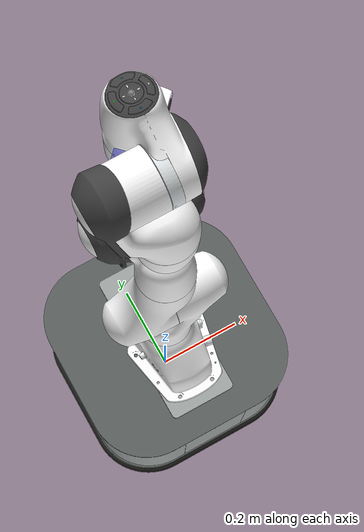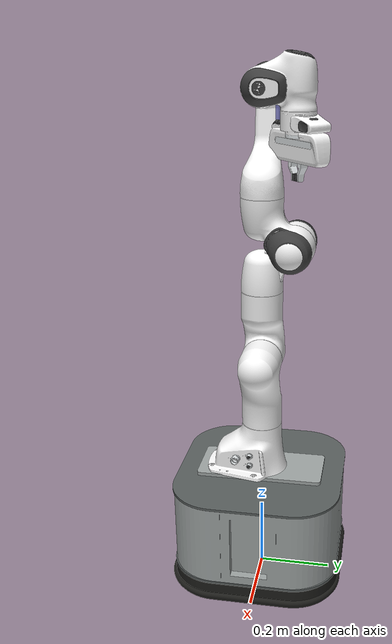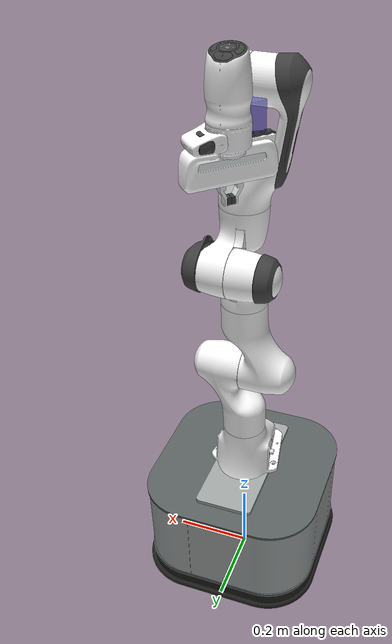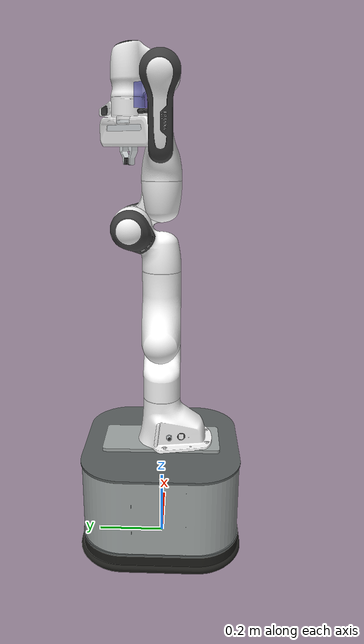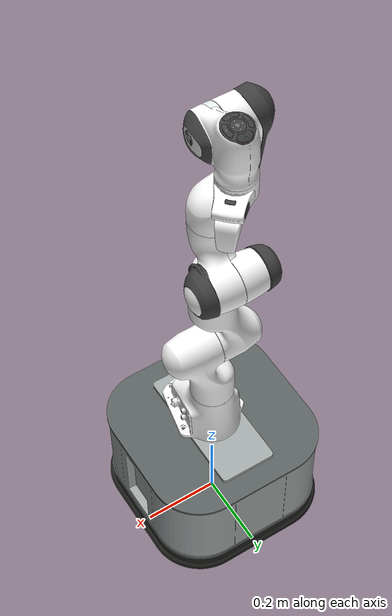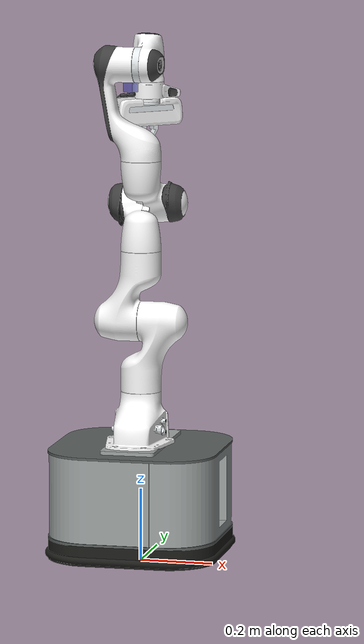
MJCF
<mujoco model="tidybot_panda">
  <compiler angle="radian" meshdir="../assets" autolimits="true" />
  <option integrator="implicitfast" />
  <option cone="elliptic" impratio="10" />

  <default>

    <default class="base">
      <default class="base/visual">
        <geom type="mesh" contype="0" conaffinity="0" group="2" />
      </default>
      <default class="base/collision">
        <geom type="mesh" group="3" />
      </default>
    </default>

    <default class="panda">
      <material specular="0.5" shininess="0.25" />
      <joint armature="0.1" damping="1" axis="0 0 1" range="-2.8973 2.8973" />
      <general dyntype="none" biastype="affine" ctrlrange="-2.8973 2.8973" forcerange="-87 87" />
      <default class="finger">
        <joint axis="0 1 0" type="slide" range="0 0.04" />
      </default>
      <default class="visual">
        <geom type="mesh" contype="0" conaffinity="0" group="2" />
      </default>
      <default class="collision">
        <geom type="mesh" group="3" />
        <default class="fingertip_pad_collision_1">
          <geom type="box" size="0.0085 0.004 0.0085" pos="0 0.0055 0.0445" />
        </default>
        <default class="fingertip_pad_collision_2">
          <geom type="box" size="0.003 0.002 0.003" pos="0.0055 0.002 0.05" />
        </default>
        <default class="fingertip_pad_collision_3">
          <geom type="box" size="0.003 0.002 0.003" pos="-0.0055 0.002 0.05" />
        </default>
        <default class="fingertip_pad_collision_4">
          <geom type="box" size="0.003 0.002 0.0035" pos="0.0055 0.002 0.0395" />
        </default>
        <default class="fingertip_pad_collision_5">
          <geom type="box" size="0.003 0.002 0.0035" pos="-0.0055 0.002 0.0395" />
        </default>
      </default>
    </default>
  </default>

  <asset>

    <material name="base_black" rgba="0.11372549 0.11372549 0.10196078 1" />
    <material name="base_gray" rgba="0.62745098 0.65098039 0.64705882 1" />
    <material name="base_dark_gray" rgba="0.35294118 0.37647059 0.37254902 1" />
    <mesh file="base/bumper.stl" />
    <mesh file="base/bottom_plate.stl" />
    <mesh file="base/body.stl" />
    <mesh file="base/top_plate.stl" />
    <mesh file="base/arm_plate.stl" />

    <material class="panda" name="white" rgba="1 1 1 1" />
    <material class="panda" name="off_white" rgba="0.901961 0.921569 0.929412 1" />
    <material class="panda" name="black" rgba="0.25 0.25 0.25 1" />
    <material class="panda" name="green" rgba="0 1 0 1" />
    <material class="panda" name="light_blue" rgba="0.039216 0.541176 0.780392 1" />

    <mesh name="link0_c" file="franka_emika_panda/assets/link0.stl" />
    <mesh name="link1_c" file="franka_emika_panda/assets/link1.stl" />
    <mesh name="link2_c" file="franka_emika_panda/assets/link2.stl" />
    <mesh name="link3_c" file="franka_emika_panda/assets/link3.stl" />
    <mesh name="link4_c" file="franka_emika_panda/assets/link4.stl" />
    <mesh name="link5_c0" file="franka_emika_panda/assets/link5_collision_0.obj" />
    <mesh name="link5_c1" file="franka_emika_panda/assets/link5_collision_1.obj" />
    <mesh name="link5_c2" file="franka_emika_panda/assets/link5_collision_2.obj" />
    <mesh name="link6_c" file="franka_emika_panda/assets/link6.stl" />
    <mesh name="link7_c" file="franka_emika_panda/assets/link7.stl" />
    <mesh name="hand_c" file="franka_emika_panda/assets/hand.stl" />

    <!-- Visual meshes -->
    <mesh file="franka_emika_panda/assets/link0_0.obj"/>
    <mesh file="franka_emika_panda/assets/link0_1.obj"/>
    <mesh file="franka_emika_panda/assets/link0_2.obj"/>
    <mesh file="franka_emika_panda/assets/link0_3.obj"/>
    <mesh file="franka_emika_panda/assets/link0_4.obj"/>
    <mesh file="franka_emika_panda/assets/link0_5.obj"/>
    <mesh file="franka_emika_panda/assets/link0_7.obj"/>
    <mesh file="franka_emika_panda/assets/link0_8.obj"/>
    <mesh file="franka_emika_panda/assets/link0_9.obj"/>
    <mesh file="franka_emika_panda/assets/link0_10.obj"/>
    <mesh file="franka_emika_panda/assets/link0_11.obj"/>
    <mesh file="franka_emika_panda/assets/link1.obj"/>
    <mesh file="franka_emika_panda/assets/link2.obj"/>
    <mesh file="franka_emika_panda/assets/link3_0.obj"/>
    <mesh file="franka_emika_panda/assets/link3_1.obj"/>
    <mesh file="franka_emika_panda/assets/link3_2.obj"/>
    <mesh file="franka_emika_panda/assets/link3_3.obj"/>
    <mesh file="franka_emika_panda/assets/link4_0.obj"/>
    <mesh file="franka_emika_panda/assets/link4_1.obj"/>
    <mesh file="franka_emika_panda/assets/link4_2.obj"/>
    <mesh file="franka_emika_panda/assets/link4_3.obj"/>
    <mesh file="franka_emika_panda/assets/link5_0.obj"/>
    <mesh file="franka_emika_panda/assets/link5_1.obj"/>
    <mesh file="franka_emika_panda/assets/link5_2.obj"/>
    <mesh file="franka_emika_panda/assets/link6_0.obj"/>
    <mesh file="franka_emika_panda/assets/link6_1.obj"/>
    <mesh file="franka_emika_panda/assets/link6_2.obj"/>
    <mesh file="franka_emika_panda/assets/link6_3.obj"/>
    <mesh file="franka_emika_panda/assets/link6_4.obj"/>
    <mesh file="franka_emika_panda/assets/link6_5.obj"/>
    <mesh file="franka_emika_panda/assets/link6_6.obj"/>
    <mesh file="franka_emika_panda/assets/link6_7.obj"/>
    <mesh file="franka_emika_panda/assets/link6_8.obj"/>
    <mesh file="franka_emika_panda/assets/link6_9.obj"/>
    <mesh file="franka_emika_panda/assets/link6_10.obj"/>
    <mesh file="franka_emika_panda/assets/link6_11.obj"/>
    <mesh file="franka_emika_panda/assets/link6_12.obj"/>
    <mesh file="franka_emika_panda/assets/link6_13.obj"/>
    <mesh file="franka_emika_panda/assets/link6_14.obj"/>
    <mesh file="franka_emika_panda/assets/link6_15.obj"/>
    <mesh file="franka_emika_panda/assets/link6_16.obj"/>
    <mesh file="franka_emika_panda/assets/link7_0.obj"/>
    <mesh file="franka_emika_panda/assets/link7_1.obj"/>
    <mesh file="franka_emika_panda/assets/link7_2.obj"/>
    <mesh file="franka_emika_panda/assets/link7_3.obj"/>
    <mesh file="franka_emika_panda/assets/link7_4.obj"/>
    <mesh file="franka_emika_panda/assets/link7_5.obj"/>
    <mesh file="franka_emika_panda/assets/link7_6.obj"/>
    <mesh file="franka_emika_panda/assets/link7_7.obj"/>
    <mesh file="franka_emika_panda/assets/hand_0.obj"/>
    <mesh file="franka_emika_panda/assets/hand_1.obj"/>
    <mesh file="franka_emika_panda/assets/hand_2.obj"/>
    <mesh file="franka_emika_panda/assets/hand_3.obj"/>
    <mesh file="franka_emika_panda/assets/hand_4.obj"/>
    <mesh file="franka_emika_panda/assets/finger_0.obj"/>
    <mesh file="franka_emika_panda/assets/finger_1.obj"/>

  </asset>

  <worldbody>
    <light name="top" pos="0 0 2" mode="trackcom" />

    <body name="base_link">
      <inertial pos="0 0 0.035" mass="60" diaginertia="0.001 0.001 0.001" />
      <joint name="joint_x" type="slide" axis="1 0 0" />
      <joint name="joint_y" type="slide" axis="0 1 0" />
      <joint name="joint_th" />

      <geom class="base/visual" mesh="bumper" material="base_black" />
      <geom class="base/visual" mesh="bottom_plate" material="base_dark_gray" />
      <geom class="base/visual" mesh="body" material="base_gray" />
      <geom class="base/visual" mesh="top_plate" material="base_dark_gray" />
      <geom class="base/visual" mesh="arm_plate" material="base_gray" />
      <geom class="base/collision" mesh="bumper" />
      <geom class="base/collision" mesh="bottom_plate" />
      <geom class="base/collision" mesh="body" />
      <geom class="base/collision" mesh="top_plate" />
      <geom class="base/collision" mesh="arm_plate" />

      <camera name="base_cam" pos="0.2525 0 0.335" euler="0 -0.7853981634 -1.5707963268" fovy="52.23" resolution="640 360" />

      <body name="link0" pos="0 0 0.333" quat="0.7071068 0 0 0.7071068" childclass="panda">
        <inertial mass="0.629769" pos="-0.041018 -0.00014 0.049974"
          fullinertia="0.00315 0.00388 0.004285 8.2904e-7 0.00015 8.2299e-6"/>
        <geom mesh="link0_0" material="off_white" class="visual"/>
        <geom mesh="link0_1" material="black" class="visual"/>
        <geom mesh="link0_2" material="off_white" class="visual"/>
        <geom mesh="link0_3" material="black" class="visual"/>
        <geom mesh="link0_4" material="off_white" class="visual"/>
        <geom mesh="link0_5" material="black" class="visual"/>
        <geom mesh="link0_7" material="white" class="visual"/>
        <geom mesh="link0_8" material="white" class="visual"/>
        <geom mesh="link0_9" material="black" class="visual"/>
        <geom mesh="link0_10" material="off_white" class="visual"/>
        <geom mesh="link0_11" material="white" class="visual"/>
        <geom mesh="link0_c" class="collision"/>
        <body name="link1" pos="0 0 0.333">
          <inertial mass="4.970684" pos="0.003875 0.002081 -0.04762"
            fullinertia="0.70337 0.70661 0.0091170 -0.00013900 0.0067720 0.019169"/>
          <joint name="joint1"/>
          <geom material="white" mesh="link1" class="visual"/>
          <geom mesh="link1_c" class="collision"/>
          <body name="link2" quat="1 -1 0 0">
            <inertial mass="0.646926" pos="-0.003141 -0.02872 0.003495"
              fullinertia="0.0079620 2.8110e-2 2.5995e-2 -3.925e-3 1.0254e-2 7.04e-4"/>
            <joint name="joint2" range="-1.7628 1.7628"/>
            <geom material="white" mesh="link2" class="visual"/>
            <geom mesh="link2_c" class="collision"/>
            <body name="link3" pos="0 -0.316 0" quat="1 1 0 0">
              <joint name="joint3"/>
              <inertial mass="3.228604" pos="2.7518e-2 3.9252e-2 -6.6502e-2"
                fullinertia="3.7242e-2 3.6155e-2 1.083e-2 -4.761e-3 -1.1396e-2 -1.2805e-2"/>
              <geom mesh="link3_0" material="white" class="visual"/>
              <geom mesh="link3_1" material="white" class="visual"/>
              <geom mesh="link3_2" material="white" class="visual"/>
              <geom mesh="link3_3" material="black" class="visual"/>
              <geom mesh="link3_c" class="collision"/>
              <body name="link4" pos="0.0825 0 0" quat="1 1 0 0">
                <inertial mass="3.587895" pos="-5.317e-2 1.04419e-1 2.7454e-2"
                  fullinertia="2.5853e-2 1.9552e-2 2.8323e-2 7.796e-3 -1.332e-3 8.641e-3"/>
                <joint name="joint4" range="-3.0718 -0.0698"/>
                <geom mesh="link4_0" material="white" class="visual"/>
                <geom mesh="link4_1" material="white" class="visual"/>
                <geom mesh="link4_2" material="black" class="visual"/>
                <geom mesh="link4_3" material="white" class="visual"/>
                <geom mesh="link4_c" class="collision"/>
                <body name="link5" pos="-0.0825 0.384 0" quat="1 -1 0 0">
                  <inertial mass="1.225946" pos="-1.1953e-2 4.1065e-2 -3.8437e-2"
                    fullinertia="3.5549e-2 2.9474e-2 8.627e-3 -2.117e-3 -4.037e-3 2.29e-4"/>
                  <joint name="joint5"/>
                  <geom mesh="link5_0" material="black" class="visual"/>
                  <geom mesh="link5_1" material="white" class="visual"/>
                  <geom mesh="link5_2" material="white" class="visual"/>
                  <geom mesh="link5_c0" class="collision"/>
                  <geom mesh="link5_c1" class="collision"/>
                  <geom mesh="link5_c2" class="collision"/>
                  <body name="link6" quat="1 1 0 0">
                    <inertial mass="1.666555" pos="6.0149e-2 -1.4117e-2 -1.0517e-2"
                      fullinertia="1.964e-3 4.354e-3 5.433e-3 1.09e-4 -1.158e-3 3.41e-4"/>
                    <joint name="joint6" range="-0.0175 3.7525"/>
                    <geom mesh="link6_0" material="off_white" class="visual"/>
                    <geom mesh="link6_1" material="white" class="visual"/>
                    <geom mesh="link6_2" material="black" class="visual"/>
                    <geom mesh="link6_3" material="white" class="visual"/>
                    <geom mesh="link6_4" material="white" class="visual"/>
                    <geom mesh="link6_5" material="white" class="visual"/>
                    <geom mesh="link6_6" material="white" class="visual"/>
                    <geom mesh="link6_7" material="light_blue" class="visual"/>
                    <geom mesh="link6_8" material="light_blue" class="visual"/>
                    <geom mesh="link6_9" material="black" class="visual"/>
                    <geom mesh="link6_10" material="black" class="visual"/>
                    <geom mesh="link6_11" material="white" class="visual"/>
                    <geom mesh="link6_12" material="green" class="visual"/>
                    <geom mesh="link6_13" material="white" class="visual"/>
                    <geom mesh="link6_14" material="black" class="visual"/>
                    <geom mesh="link6_15" material="black" class="visual"/>
                    <geom mesh="link6_16" material="white" class="visual"/>
                    <geom mesh="link6_c" class="collision"/>
                    <body name="link7" pos="0.088 0 0" quat="1 1 0 0">
                      <inertial mass="7.35522e-01" pos="1.0517e-2 -4.252e-3 6.1597e-2"
                        fullinertia="1.2516e-2 1.0027e-2 4.815e-3 -4.28e-4 -1.196e-3 -7.41e-4"/>
                      <joint name="joint7"/>
                      <geom mesh="link7_0" material="white" class="visual"/>
                      <geom mesh="link7_1" material="black" class="visual"/>
                      <geom mesh="link7_2" material="black" class="visual"/>
                      <geom mesh="link7_3" material="black" class="visual"/>
                      <geom mesh="link7_4" material="black" class="visual"/>
                      <geom mesh="link7_5" material="black" class="visual"/>
                      <geom mesh="link7_6" material="black" class="visual"/>
                      <geom mesh="link7_7" material="white" class="visual"/>
                      <geom mesh="link7_c" class="collision"/>
                      <body name="hand" pos="0 0 0.107" quat="0.9238795 0 0 -0.3826834">
                        <!-- Place holder camera: a box!-->
                        <geom name="wrist_camera_geom" type="box" size="0.015 0.015 0.03"
                        pos="0 -0.05639 -0.058475" rgba="0.2 0.2 0.8 0.5"/>

                        <camera name="wrist" pos="0 -0.05639 -0.158475" quat="0 0 0 1" fovy="41.83792730009236"
                            resolution="640 480"/>
                        <site name="pinch_site" pos="0 0 -0.181525" quat="0 1 0 0"/>
                        <inertial mass="0.73" pos="-0.01 0 0.03" diaginertia="0.001 0.0025 0.0017"/>
                        <geom mesh="hand_0" material="off_white" class="visual"/>
                        <geom mesh="hand_1" material="black" class="visual"/>
                        <geom mesh="hand_2" material="black" class="visual"/>
                        <geom mesh="hand_3" material="white" class="visual"/>
                        <geom mesh="hand_4" material="off_white" class="visual"/>
                        <geom mesh="hand_c" class="collision"/>
                        <body name="left_finger" pos="0 0 0.0584">
                          <inertial mass="0.015" pos="0 0 0" diaginertia="2.375e-6 2.375e-6 7.5e-7"/>
                          <joint name="finger_joint1" class="finger"/>
                          <geom mesh="finger_0" material="off_white" class="visual"/>
                          <geom mesh="finger_1" material="black" class="visual"/>
                          <geom mesh="finger_0" class="collision"/>
                          <geom class="fingertip_pad_collision_1"/>
                          <geom class="fingertip_pad_collision_2"/>
                          <geom class="fingertip_pad_collision_3"/>
                          <geom class="fingertip_pad_collision_4"/>
                          <geom class="fingertip_pad_collision_5"/>
                        </body>
                        <body name="right_finger" pos="0 0 0.0584" quat="0 0 0 1">
                          <inertial mass="0.015" pos="0 0 0" diaginertia="2.375e-6 2.375e-6 7.5e-7"/>
                          <joint name="finger_joint2" class="finger"/>
                          <geom mesh="finger_0" material="off_white" class="visual"/>
                          <geom mesh="finger_1" material="black" class="visual"/>
                          <geom mesh="finger_0" class="collision"/>
                          <geom class="fingertip_pad_collision_1"/>
                          <geom class="fingertip_pad_collision_2"/>
                          <geom class="fingertip_pad_collision_3"/>
                          <geom class="fingertip_pad_collision_4"/>
                          <geom class="fingertip_pad_collision_5"/>
                        </body>
                      </body>
                    </body>
                  </body>
                </body>
              </body>
            </body>
          </body>
        </body>
      </body>
    </body>
  </worldbody>

  <tendon>
    <fixed name="split">
      <joint joint="finger_joint1" coef="0.5" />
      <joint joint="finger_joint2" coef="0.5" />
    </fixed>
  </tendon>

  <equality>
    <joint joint1="finger_joint1" joint2="finger_joint2" solimp="0.95 0.99 0.001" solref="0.005 1" />
  </equality>

  <actuator>
    <position name="joint_x" joint="joint_x" kp="1000000" kv="50000" />
    <position name="joint_y" joint="joint_y" kp="1000000" kv="50000" />
    <position name="joint_th" joint="joint_th" kp="50000" kv="1000" />

    <general class="panda" name="actuator1" joint="joint1" gainprm="4500" biasprm="0 -4500 -450"/>
    <general class="panda" name="actuator2" joint="joint2" gainprm="4500" biasprm="0 -4500 -450"
      ctrlrange="-1.7628 1.7628"/>
    <general class="panda" name="actuator3" joint="joint3" gainprm="3500" biasprm="0 -3500 -350"/>
    <general class="panda" name="actuator4" joint="joint4" gainprm="3500" biasprm="0 -3500 -350"
      ctrlrange="-3.0718 -0.0698"/>
    <general class="panda" name="actuator5" joint="joint5" gainprm="2000" biasprm="0 -2000 -200" forcerange="-12 12"/>
    <general class="panda" name="actuator6" joint="joint6" gainprm="2000" biasprm="0 -2000 -200" forcerange="-12 12"
      ctrlrange="-0.0175 3.7525"/>
    <general class="panda" name="actuator7" joint="joint7" gainprm="2000" biasprm="0 -2000 -200" forcerange="-12 12"/>
    <!-- Remap original ctrlrange (0, 0.04) to (0, 255): 0.04 * 100 / 255 = 0.01568627451 -->
    <general class="panda" name="actuator8" tendon="split" forcerange="-100 100" ctrlrange="0 255"
      gainprm="0.01568627451 0 0" biasprm="0 -100 -10"/>

  </actuator>

</mujoco>
